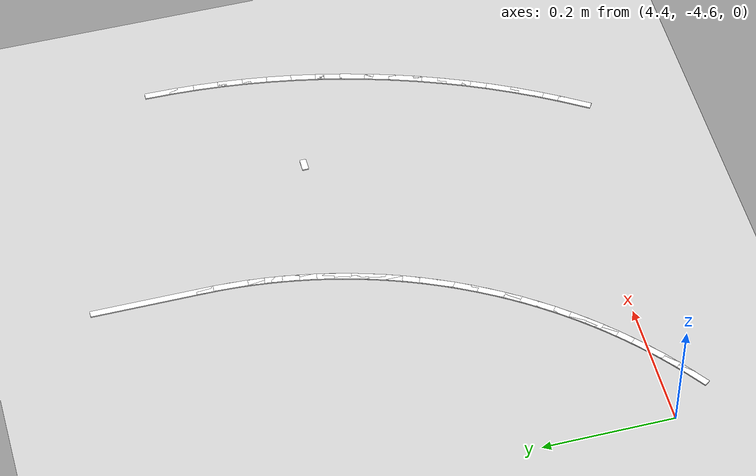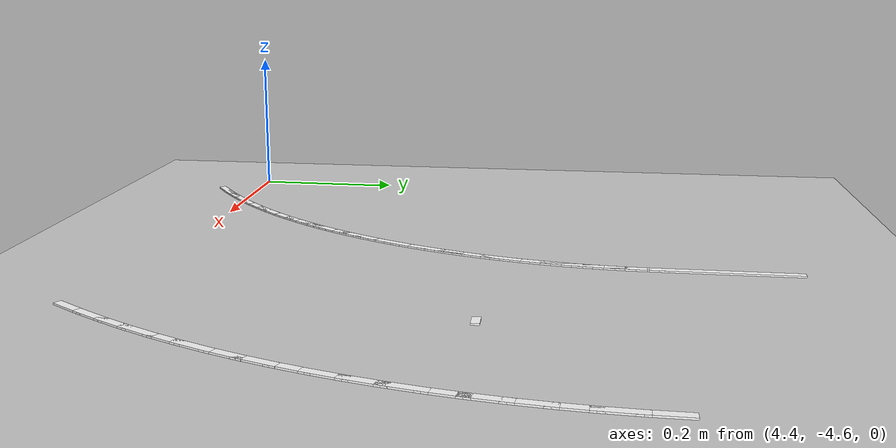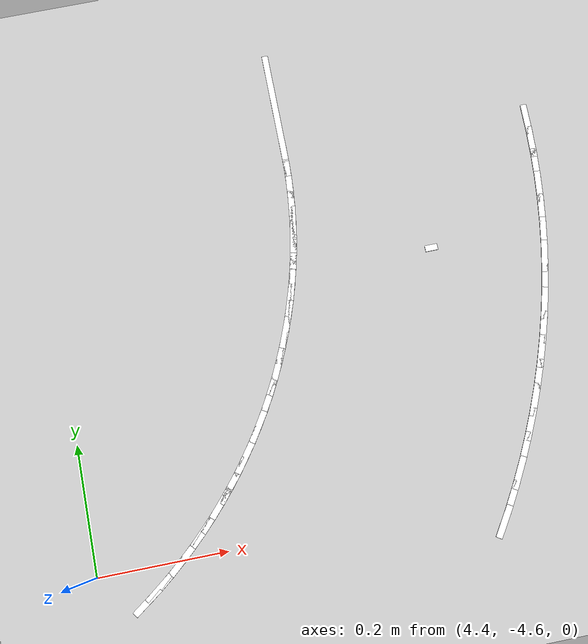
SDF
<sdf version="1.7">
 <world name="default">
  <model name="ground_plane">
   <static>1</static>
   <link name="link">
    <collision name="collision">
     <geometry><plane><normal>0 0 1</normal><size>100 100</size></plane></geometry>
     <surface>
      <contact><collide_bitmask>65535</collide_bitmask></contact>
      <friction><ode><mu>100</mu><mu2>50</mu2></ode></friction>
     </surface>
    </collision>
    <visual name="visual">
     <cast_shadows>0</cast_shadows>
     <geometry><plane><normal>0 0 1</normal><size>100 100</size></plane></geometry>
     <material>
      <script><uri>file://media/materials/scripts/gazebo.material</uri><name>Gazebo/Grey</name></script>
     </material>
    </visual>
   </link>
  </model>
  <model name="lane_line_left_69">
   <static>1</static>
   <link name="link">
    <pose>0 0 -0.004 0 -0 0</pose>
    <visual name="visual">
     <geometry><box><size>0.0521 0.01 0.01</size></box></geometry>
     <material><ambient>1 1 1 1</ambient><diffuse>1 1 1 1</diffuse></material>
    </visual>
    <collision name="collision"><geometry><box><size>0.0521 0.01 0.01</size></box></geometry></collision>
   </link>
   <pose>4.46808 -4.64861 0 0 -0 0.625113</pose>
  </model>
  <model name="lane_line_left_70">
   <static>1</static>
   <link name="link">
    <pose>0 0 -0.004 0 -0 0</pose>
    <visual name="visual">
     <geometry><box><size>0.0521 0.01 0.01</size></box></geometry>
     <material><ambient>1 1 1 1</ambient><diffuse>1 1 1 1</diffuse></material>
    </visual>
    <collision name="collision"><geometry><box><size>0.0521 0.01 0.01</size></box></geometry></collision>
   </link>
   <pose>4.48862 -4.63328 0 0 -0 0.65717</pose>
  </model>
  <model name="lane_line_left_71">
   <static>1</static>
   <link name="link">
    <pose>0 0 -0.004 0 -0 0</pose>
    <visual name="visual">
     <geometry><box><size>0.0521 0.01 0.01</size></box></geometry>
     <material><ambient>1 1 1 1</ambient><diffuse>1 1 1 1</diffuse></material>
    </visual>
    <collision name="collision"><geometry><box><size>0.0521 0.01 0.01</size></box></geometry></collision>
   </link>
   <pose>4.50867 -4.61729 0 0 -0 0.689227</pose>
  </model>
  <model name="lane_line_left_72">
   <static>1</static>
   <link name="link">
    <pose>0 0 -0.004 0 -0 0</pose>
    <visual name="visual">
     <geometry><box><size>0.0521 0.01 0.01</size></box></geometry>
     <material><ambient>1 1 1 1</ambient><diffuse>1 1 1 1</diffuse></material>
    </visual>
    <collision name="collision"><geometry><box><size>0.0521 0.01 0.01</size></box></geometry></collision>
   </link>
   <pose>4.52819 -4.60067 0 0 -0 0.721284</pose>
  </model>
  <model name="lane_line_left_73">
   <static>1</static>
   <link name="link">
    <pose>0 0 -0.004 0 -0 0</pose>
    <visual name="visual">
     <geometry><box><size>0.0521 0.01 0.01</size></box></geometry>
     <material><ambient>1 1 1 1</ambient><diffuse>1 1 1 1</diffuse></material>
    </visual>
    <collision name="collision"><geometry><box><size>0.0521 0.01 0.01</size></box></geometry></collision>
   </link>
   <pose>4.54718 -4.58343 0 0 -0 0.753341</pose>
  </model>
  <model name="lane_line_left_74">
   <static>1</static>
   <link name="link">
    <pose>0 0 -0.004 0 -0 0</pose>
    <visual name="visual">
     <geometry><box><size>0.0521 0.01 0.01</size></box></geometry>
     <material><ambient>1 1 1 1</ambient><diffuse>1 1 1 1</diffuse></material>
    </visual>
    <collision name="collision"><geometry><box><size>0.0521 0.01 0.01</size></box></geometry></collision>
   </link>
   <pose>4.56559 -4.56559 0 0 -0 0.785398</pose>
  </model>
  <model name="lane_line_left_75">
   <static>1</static>
   <link name="link">
    <pose>0 0 -0.004 0 -0 0</pose>
    <visual name="visual">
     <geometry><box><size>0.0521 0.01 0.01</size></box></geometry>
     <material><ambient>1 1 1 1</ambient><diffuse>1 1 1 1</diffuse></material>
    </visual>
    <collision name="collision"><geometry><box><size>0.0521 0.01 0.01</size></box></geometry></collision>
   </link>
   <pose>4.58343 -4.54718 0 0 -0 0.817455</pose>
  </model>
  <model name="lane_line_left_76">
   <static>1</static>
   <link name="link">
    <pose>0 0 -0.004 0 -0 0</pose>
    <visual name="visual">
     <geometry><box><size>0.0521 0.01 0.01</size></box></geometry>
     <material><ambient>1 1 1 1</ambient><diffuse>1 1 1 1</diffuse></material>
    </visual>
    <collision name="collision"><geometry><box><size>0.0521 0.01 0.01</size></box></geometry></collision>
   </link>
   <pose>4.60067 -4.52819 0 0 -0 0.849512</pose>
  </model>
  <model name="lane_line_left_77">
   <static>1</static>
   <link name="link">
    <pose>0 0 -0.004 0 -0 0</pose>
    <visual name="visual">
     <geometry><box><size>0.0521 0.01 0.01</size></box></geometry>
     <material><ambient>1 1 1 1</ambient><diffuse>1 1 1 1</diffuse></material>
    </visual>
    <collision name="collision"><geometry><box><size>0.0521 0.01 0.01</size></box></geometry></collision>
   </link>
   <pose>4.61729 -4.50867 0 0 -0 0.881569</pose>
  </model>
  <model name="lane_line_left_78">
   <static>1</static>
   <link name="link">
    <pose>0 0 -0.004 0 -0 0</pose>
    <visual name="visual">
     <geometry><box><size>0.0521 0.01 0.01</size></box></geometry>
     <material><ambient>1 1 1 1</ambient><diffuse>1 1 1 1</diffuse></material>
    </visual>
    <collision name="collision"><geometry><box><size>0.0521 0.01 0.01</size></box></geometry></collision>
   </link>
   <pose>4.63328 -4.48862 0 0 -0 0.913626</pose>
  </model>
  <model name="lane_line_left_79">
   <static>1</static>
   <link name="link">
    <pose>0 0 -0.004 0 -0 0</pose>
    <visual name="visual">
     <geometry><box><size>0.0521 0.01 0.01</size></box></geometry>
     <material><ambient>1 1 1 1</ambient><diffuse>1 1 1 1</diffuse></material>
    </visual>
    <collision name="collision"><geometry><box><size>0.0521 0.01 0.01</size></box></geometry></collision>
   </link>
   <pose>4.64861 -4.46808 0 0 -0 0.945684</pose>
  </model>
  <model name="lane_line_left_80">
   <static>1</static>
   <link name="link">
    <pose>0 0 -0.004 0 -0 0</pose>
    <visual name="visual">
     <geometry><box><size>0.0521 0.01 0.01</size></box></geometry>
     <material><ambient>1 1 1 1</ambient><diffuse>1 1 1 1</diffuse></material>
    </visual>
    <collision name="collision"><geometry><box><size>0.0521 0.01 0.01</size></box></geometry></collision>
   </link>
   <pose>4.66328 -4.44705 0 0 -0 0.977741</pose>
  </model>
  <model name="lane_line_left_81">
   <static>1</static>
   <link name="link">
    <pose>0 0 -0.004 0 -0 0</pose>
    <visual name="visual">
     <geometry><box><size>0.0521 0.01 0.01</size></box></geometry>
     <material><ambient>1 1 1 1</ambient><diffuse>1 1 1 1</diffuse></material>
    </visual>
    <collision name="collision"><geometry><box><size>0.0521 0.01 0.01</size></box></geometry></collision>
   </link>
   <pose>4.67727 -4.42556 0 0 -0 1.0098</pose>
  </model>
  <model name="lane_line_right_81">
   <static>1</static>
   <link name="link">
    <pose>0 0 -0.004 0 -0 0</pose>
    <visual name="visual">
     <geometry><box><size>0.0521 0.01 0.01</size></box></geometry>
     <material><ambient>1 1 1 1</ambient><diffuse>1 1 1 1</diffuse></material>
    </visual>
    <collision name="collision"><geometry><box><size>0.0521 0.01 0.01</size></box></geometry></collision>
   </link>
   <pose>5.01596 -4.63837 0 0 -0 1.0098</pose>
  </model>
  <model name="lane_line_left_82">
   <static>1</static>
   <link name="link">
    <pose>0 0 -0.004 0 -0 0</pose>
    <visual name="visual">
     <geometry><box><size>0.0521 0.01 0.01</size></box></geometry>
     <material><ambient>1 1 1 1</ambient><diffuse>1 1 1 1</diffuse></material>
    </visual>
    <collision name="collision"><geometry><box><size>0.0521 0.01 0.01</size></box></geometry></collision>
   </link>
   <pose>4.69056 -4.40363 0 0 -0 1.04185</pose>
  </model>
  <model name="lane_line_right_82">
   <static>1</static>
   <link name="link">
    <pose>0 0 -0.004 0 -0 0</pose>
    <visual name="visual">
     <geometry><box><size>0.0521 0.01 0.01</size></box></geometry>
     <material><ambient>1 1 1 1</ambient><diffuse>1 1 1 1</diffuse></material>
    </visual>
    <collision name="collision"><geometry><box><size>0.0521 0.01 0.01</size></box></geometry></collision>
   </link>
   <pose>5.0359 -4.60548 0 0 -0 1.04185</pose>
  </model>
  <model name="lane_line_left_83">
   <static>1</static>
   <link name="link">
    <pose>0 0 -0.004 0 -0 0</pose>
    <visual name="visual">
     <geometry><box><size>0.0521 0.01 0.01</size></box></geometry>
     <material><ambient>1 1 1 1</ambient><diffuse>1 1 1 1</diffuse></material>
    </visual>
    <collision name="collision"><geometry><box><size>0.0521 0.01 0.01</size></box></geometry></collision>
   </link>
   <pose>4.70314 -4.38129 0 0 -0 1.07391</pose>
  </model>
  <model name="lane_line_right_83">
   <static>1</static>
   <link name="link">
    <pose>0 0 -0.004 0 -0 0</pose>
    <visual name="visual">
     <geometry><box><size>0.0521 0.01 0.01</size></box></geometry>
     <material><ambient>1 1 1 1</ambient><diffuse>1 1 1 1</diffuse></material>
    </visual>
    <collision name="collision"><geometry><box><size>0.0521 0.01 0.01</size></box></geometry></collision>
   </link>
   <pose>5.05477 -4.57197 0 0 -0 1.07391</pose>
  </model>
  <model name="lane_line_left_84">
   <static>1</static>
   <link name="link">
    <pose>0 0 -0.004 0 -0 0</pose>
    <visual name="visual">
     <geometry><box><size>0.0521 0.01 0.01</size></box></geometry>
     <material><ambient>1 1 1 1</ambient><diffuse>1 1 1 1</diffuse></material>
    </visual>
    <collision name="collision"><geometry><box><size>0.0521 0.01 0.01</size></box></geometry></collision>
   </link>
   <pose>4.715 -4.35856 0 0 -0 1.10597</pose>
  </model>
  <model name="lane_line_right_84">
   <static>1</static>
   <link name="link">
    <pose>0 0 -0.004 0 -0 0</pose>
    <visual name="visual">
     <geometry><box><size>0.0521 0.01 0.01</size></box></geometry>
     <material><ambient>1 1 1 1</ambient><diffuse>1 1 1 1</diffuse></material>
    </visual>
    <collision name="collision"><geometry><box><size>0.0521 0.01 0.01</size></box></geometry></collision>
   </link>
   <pose>5.07256 -4.53786 0 0 -0 1.10597</pose>
  </model>
  <model name="lane_line_left_85">
   <static>1</static>
   <link name="link">
    <pose>0 0 -0.004 0 -0 0</pose>
    <visual name="visual">
     <geometry><box><size>0.0521 0.01 0.01</size></box></geometry>
     <material><ambient>1 1 1 1</ambient><diffuse>1 1 1 1</diffuse></material>
    </visual>
    <collision name="collision"><geometry><box><size>0.0521 0.01 0.01</size></box></geometry></collision>
   </link>
   <pose>4.72613 -4.33546 0 0 -0 1.13803</pose>
  </model>
  <model name="lane_line_right_85">
   <static>1</static>
   <link name="link">
    <pose>0 0 -0.004 0 -0 0</pose>
    <visual name="visual">
     <geometry><box><size>0.0521 0.01 0.01</size></box></geometry>
     <material><ambient>1 1 1 1</ambient><diffuse>1 1 1 1</diffuse></material>
    </visual>
    <collision name="collision"><geometry><box><size>0.0521 0.01 0.01</size></box></geometry></collision>
   </link>
   <pose>5.08925 -4.50321 0 0 -0 1.13803</pose>
  </model>
  <model name="lane_line_left_86">
   <static>1</static>
   <link name="link">
    <pose>0 0 -0.004 0 -0 0</pose>
    <visual name="visual">
     <geometry><box><size>0.0521 0.01 0.01</size></box></geometry>
     <material><ambient>1 1 1 1</ambient><diffuse>1 1 1 1</diffuse></material>
    </visual>
    <collision name="collision"><geometry><box><size>0.0521 0.01 0.01</size></box></geometry></collision>
   </link>
   <pose>4.73651 -4.31201 0 0 -0 1.17008</pose>
  </model>
  <model name="lane_line_right_86">
   <static>1</static>
   <link name="link">
    <pose>0 0 -0.004 0 -0 0</pose>
    <visual name="visual">
     <geometry><box><size>0.0521 0.01 0.01</size></box></geometry>
     <material><ambient>1 1 1 1</ambient><diffuse>1 1 1 1</diffuse></material>
    </visual>
    <collision name="collision"><geometry><box><size>0.0521 0.01 0.01</size></box></geometry></collision>
   </link>
   <pose>5.10482 -4.46804 0 0 -0 1.17008</pose>
  </model>
  <model name="lane_line_left_87">
   <static>1</static>
   <link name="link">
    <pose>0 0 -0.004 0 -0 0</pose>
    <visual name="visual">
     <geometry><box><size>0.0521 0.01 0.01</size></box></geometry>
     <material><ambient>1 1 1 1</ambient><diffuse>1 1 1 1</diffuse></material>
    </visual>
    <collision name="collision"><geometry><box><size>0.0521 0.01 0.01</size></box></geometry></collision>
   </link>
   <pose>4.74613 -4.28824 0 0 -0 1.20214</pose>
  </model>
  <model name="lane_line_right_87">
   <static>1</static>
   <link name="link">
    <pose>0 0 -0.004 0 -0 0</pose>
    <visual name="visual">
     <geometry><box><size>0.0521 0.01 0.01</size></box></geometry>
     <material><ambient>1 1 1 1</ambient><diffuse>1 1 1 1</diffuse></material>
    </visual>
    <collision name="collision"><geometry><box><size>0.0521 0.01 0.01</size></box></geometry></collision>
   </link>
   <pose>5.11926 -4.43239 0 0 -0 1.20214</pose>
  </model>
  <model name="lane_line_left_88">
   <static>1</static>
   <link name="link">
    <pose>0 0 -0.004 0 -0 0</pose>
    <visual name="visual">
     <geometry><box><size>0.0521 0.01 0.01</size></box></geometry>
     <material><ambient>1 1 1 1</ambient><diffuse>1 1 1 1</diffuse></material>
    </visual>
    <collision name="collision"><geometry><box><size>0.0521 0.01 0.01</size></box></geometry></collision>
   </link>
   <pose>4.75499 -4.26418 0 0 -0 1.2342</pose>
  </model>
  <model name="lane_line_right_88">
   <static>1</static>
   <link name="link">
    <pose>0 0 -0.004 0 -0 0</pose>
    <visual name="visual">
     <geometry><box><size>0.0521 0.01 0.01</size></box></geometry>
     <material><ambient>1 1 1 1</ambient><diffuse>1 1 1 1</diffuse></material>
    </visual>
    <collision name="collision"><geometry><box><size>0.0521 0.01 0.01</size></box></geometry></collision>
   </link>
   <pose>5.13254 -4.39629 0 0 -0 1.2342</pose>
  </model>
  <model name="lane_line_left_89">
   <static>1</static>
   <link name="link">
    <pose>0 0 -0.004 0 -0 0</pose>
    <visual name="visual">
     <geometry><box><size>0.0521 0.01 0.01</size></box></geometry>
     <material><ambient>1 1 1 1</ambient><diffuse>1 1 1 1</diffuse></material>
    </visual>
    <collision name="collision"><geometry><box><size>0.0521 0.01 0.01</size></box></geometry></collision>
   </link>
   <pose>4.76306 -4.23985 0 0 -0 1.26625</pose>
  </model>
  <model name="lane_line_right_89">
   <static>1</static>
   <link name="link">
    <pose>0 0 -0.004 0 -0 0</pose>
    <visual name="visual">
     <geometry><box><size>0.0521 0.01 0.01</size></box></geometry>
     <material><ambient>1 1 1 1</ambient><diffuse>1 1 1 1</diffuse></material>
    </visual>
    <collision name="collision"><geometry><box><size>0.0521 0.01 0.01</size></box></geometry></collision>
   </link>
   <pose>5.14466 -4.35979 0 0 -0 1.26625</pose>
  </model>
  <model name="lane_line_left_90">
   <static>1</static>
   <link name="link">
    <pose>0 0 -0.004 0 -0 0</pose>
    <visual name="visual">
     <geometry><box><size>0.0521 0.01 0.01</size></box></geometry>
     <material><ambient>1 1 1 1</ambient><diffuse>1 1 1 1</diffuse></material>
    </visual>
    <collision name="collision"><geometry><box><size>0.0521 0.01 0.01</size></box></geometry></collision>
   </link>
   <pose>4.77036 -4.21527 0 0 -0 1.29831</pose>
  </model>
  <model name="lane_line_right_90">
   <static>1</static>
   <link name="link">
    <pose>0 0 -0.004 0 -0 0</pose>
    <visual name="visual">
     <geometry><box><size>0.0521 0.01 0.01</size></box></geometry>
     <material><ambient>1 1 1 1</ambient><diffuse>1 1 1 1</diffuse></material>
    </visual>
    <collision name="collision"><geometry><box><size>0.0521 0.01 0.01</size></box></geometry></collision>
   </link>
   <pose>5.1556 -4.32292 0 0 -0 1.29831</pose>
  </model>
  <model name="lane_line_left_91">
   <static>1</static>
   <link name="link">
    <pose>0 0 -0.004 0 -0 0</pose>
    <visual name="visual">
     <geometry><box><size>0.0521 0.01 0.01</size></box></geometry>
     <material><ambient>1 1 1 1</ambient><diffuse>1 1 1 1</diffuse></material>
    </visual>
    <collision name="collision"><geometry><box><size>0.0521 0.01 0.01</size></box></geometry></collision>
   </link>
   <pose>4.77686 -4.19046 0 0 -0 1.33037</pose>
  </model>
  <model name="lane_line_right_91">
   <static>1</static>
   <link name="link">
    <pose>0 0 -0.004 0 -0 0</pose>
    <visual name="visual">
     <geometry><box><size>0.0521 0.01 0.01</size></box></geometry>
     <material><ambient>1 1 1 1</ambient><diffuse>1 1 1 1</diffuse></material>
    </visual>
    <collision name="collision"><geometry><box><size>0.0521 0.01 0.01</size></box></geometry></collision>
   </link>
   <pose>5.16536 -4.28571 0 0 -0 1.33037</pose>
  </model>
  <model name="lane_line_left_92">
   <static>1</static>
   <link name="link">
    <pose>0 0 -0.004 0 -0 0</pose>
    <visual name="visual">
     <geometry><box><size>0.0521 0.01 0.01</size></box></geometry>
     <material><ambient>1 1 1 1</ambient><diffuse>1 1 1 1</diffuse></material>
    </visual>
    <collision name="collision"><geometry><box><size>0.0521 0.01 0.01</size></box></geometry></collision>
   </link>
   <pose>4.78257 -4.16547 0 0 -0 1.36243</pose>
  </model>
  <model name="lane_line_right_92">
   <static>1</static>
   <link name="link">
    <pose>0 0 -0.004 0 -0 0</pose>
    <visual name="visual">
     <geometry><box><size>0.0521 0.01 0.01</size></box></geometry>
     <material><ambient>1 1 1 1</ambient><diffuse>1 1 1 1</diffuse></material>
    </visual>
    <collision name="collision"><geometry><box><size>0.0521 0.01 0.01</size></box></geometry></collision>
   </link>
   <pose>5.17392 -4.24821 0 0 -0 1.36243</pose>
  </model>
  <model name="lane_line_left_93">
   <static>1</static>
   <link name="link">
    <pose>0 0 -0.004 0 -0 0</pose>
    <visual name="visual">
     <geometry><box><size>0.0521 0.01 0.01</size></box></geometry>
     <material><ambient>1 1 1 1</ambient><diffuse>1 1 1 1</diffuse></material>
    </visual>
    <collision name="collision"><geometry><box><size>0.0521 0.01 0.01</size></box></geometry></collision>
   </link>
   <pose>4.78747 -4.1403 0 0 -0 1.39448</pose>
  </model>
  <model name="lane_line_right_93">
   <static>1</static>
   <link name="link">
    <pose>0 0 -0.004 0 -0 0</pose>
    <visual name="visual">
     <geometry><box><size>0.0521 0.01 0.01</size></box></geometry>
     <material><ambient>1 1 1 1</ambient><diffuse>1 1 1 1</diffuse></material>
    </visual>
    <collision name="collision"><geometry><box><size>0.0521 0.01 0.01</size></box></geometry></collision>
   </link>
   <pose>5.18127 -4.21046 0 0 -0 1.39448</pose>
  </model>
  <model name="lane_line_left_94">
   <static>1</static>
   <link name="link">
    <pose>0 0 -0.004 0 -0 0</pose>
    <visual name="visual">
     <geometry><box><size>0.0521 0.01 0.01</size></box></geometry>
     <material><ambient>1 1 1 1</ambient><diffuse>1 1 1 1</diffuse></material>
    </visual>
    <collision name="collision"><geometry><box><size>0.0521 0.01 0.01</size></box></geometry></collision>
   </link>
   <pose>4.79156 -4.11499 0 0 -0 1.42654</pose>
  </model>
  <model name="lane_line_right_94">
   <static>1</static>
   <link name="link">
    <pose>0 0 -0.004 0 -0 0</pose>
    <visual name="visual">
     <geometry><box><size>0.0521 0.01 0.01</size></box></geometry>
     <material><ambient>1 1 1 1</ambient><diffuse>1 1 1 1</diffuse></material>
    </visual>
    <collision name="collision"><geometry><box><size>0.0521 0.01 0.01</size></box></geometry></collision>
   </link>
   <pose>5.18741 -4.17249 0 0 -0 1.42654</pose>
  </model>
  <model name="lane_line_left_95">
   <static>1</static>
   <link name="link">
    <pose>0 0 -0.004 0 -0 0</pose>
    <visual name="visual">
     <geometry><box><size>0.0521 0.01 0.01</size></box></geometry>
     <material><ambient>1 1 1 1</ambient><diffuse>1 1 1 1</diffuse></material>
    </visual>
    <collision name="collision"><geometry><box><size>0.0521 0.01 0.01</size></box></geometry></collision>
   </link>
   <pose>4.79484 -4.08956 0 0 -0 1.4586</pose>
  </model>
  <model name="lane_line_right_95">
   <static>1</static>
   <link name="link">
    <pose>0 0 -0.004 0 -0 0</pose>
    <visual name="visual">
     <geometry><box><size>0.0521 0.01 0.01</size></box></geometry>
     <material><ambient>1 1 1 1</ambient><diffuse>1 1 1 1</diffuse></material>
    </visual>
    <collision name="collision"><geometry><box><size>0.0521 0.01 0.01</size></box></geometry></collision>
   </link>
   <pose>5.19233 -4.13434 0 0 -0 1.4586</pose>
  </model>
  <model name="lane_line_left_96">
   <static>1</static>
   <link name="link">
    <pose>0 0 -0.004 0 -0 0</pose>
    <visual name="visual">
     <geometry><box><size>0.0521 0.01 0.01</size></box></geometry>
     <material><ambient>1 1 1 1</ambient><diffuse>1 1 1 1</diffuse></material>
    </visual>
    <collision name="collision"><geometry><box><size>0.0521 0.01 0.01</size></box></geometry></collision>
   </link>
   <pose>4.7973 -4.06404 0 0 -0 1.49065</pose>
  </model>
  <model name="lane_line_right_96">
   <static>1</static>
   <link name="link">
    <pose>0 0 -0.004 0 -0 0</pose>
    <visual name="visual">
     <geometry><box><size>0.0521 0.01 0.01</size></box></geometry>
     <material><ambient>1 1 1 1</ambient><diffuse>1 1 1 1</diffuse></material>
    </visual>
    <collision name="collision"><geometry><box><size>0.0521 0.01 0.01</size></box></geometry></collision>
   </link>
   <pose>5.19602 -4.09606 0 0 -0 1.49065</pose>
  </model>
  <model name="lane_line_left_97">
   <static>1</static>
   <link name="link">
    <pose>0 0 -0.004 0 -0 0</pose>
    <visual name="visual">
     <geometry><box><size>0.0521 0.01 0.01</size></box></geometry>
     <material><ambient>1 1 1 1</ambient><diffuse>1 1 1 1</diffuse></material>
    </visual>
    <collision name="collision"><geometry><box><size>0.0521 0.01 0.01</size></box></geometry></collision>
   </link>
   <pose>4.79895 -4.03845 0 0 -0 1.52271</pose>
  </model>
  <model name="lane_line_right_97">
   <static>1</static>
   <link name="link">
    <pose>0 0 -0.004 0 -0 0</pose>
    <visual name="visual">
     <geometry><box><size>0.0521 0.01 0.01</size></box></geometry>
     <material><ambient>1 1 1 1</ambient><diffuse>1 1 1 1</diffuse></material>
    </visual>
    <collision name="collision"><geometry><box><size>0.0521 0.01 0.01</size></box></geometry></collision>
   </link>
   <pose>5.19848 -4.05767 0 0 -0 1.52271</pose>
  </model>
  <model name="lane_line_left_98">
   <static>1</static>
   <link name="link">
    <pose>0 0 -0.004 0 -0 0</pose>
    <visual name="visual">
     <geometry><box><size>0.0521 0.01 0.01</size></box></geometry>
     <material><ambient>1 1 1 1</ambient><diffuse>1 1 1 1</diffuse></material>
    </visual>
    <collision name="collision"><geometry><box><size>0.0521 0.01 0.01</size></box></geometry></collision>
   </link>
   <pose>4.79977 -4.01282 0 0 -0 1.55477</pose>
  </model>
  <model name="lane_line_right_98">
   <static>1</static>
   <link name="link">
    <pose>0 0 -0.004 0 -0 0</pose>
    <visual name="visual">
     <geometry><box><size>0.0521 0.01 0.01</size></box></geometry>
     <material><ambient>1 1 1 1</ambient><diffuse>1 1 1 1</diffuse></material>
    </visual>
    <collision name="collision"><geometry><box><size>0.0521 0.01 0.01</size></box></geometry></collision>
   </link>
   <pose>5.19972 -4.01923 0 0 -0 1.55477</pose>
  </model>
  <model name="lane_line_right_99">
   <static>1</static>
   <link name="link">
    <pose>0 0 -0.004 0 -0 0</pose>
    <visual name="visual">
     <geometry><box><size>0.02 0.01 0.01</size></box></geometry>
     <material><ambient>1 1 1 1</ambient><diffuse>1 1 1 1</diffuse></material>
    </visual>
    <collision name="collision"><geometry><box><size>0.02 0.01 0.01</size></box></geometry></collision>
   </link>
   <pose>5 -4.2 0 0 -0 0</pose>
  </model>
  <model name="lane_line_left_100">
   <static>1</static>
   <link name="link">
    <pose>0 0 -0.004 0 -0 0</pose>
    <visual name="visual">
     <geometry><box><size>0.1833 0.01 0.01</size></box></geometry>
     <material><ambient>1 1 1 1</ambient><diffuse>1 1 1 1</diffuse></material>
    </visual>
    <collision name="collision"><geometry><box><size>0.1833 0.01 0.01</size></box></geometry></collision>
   </link>
   <pose>4.8 -3.91837 0 0 -0 1.5708</pose>
  </model>
 </world>
</sdf>
